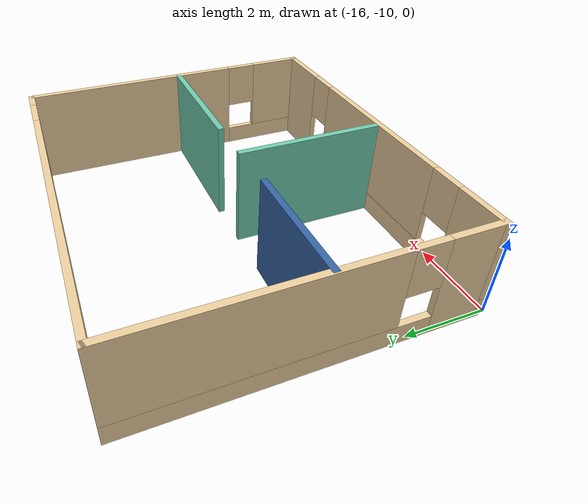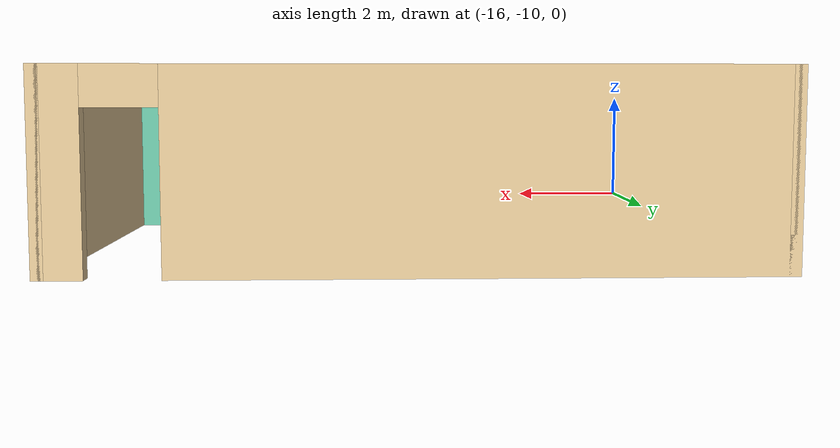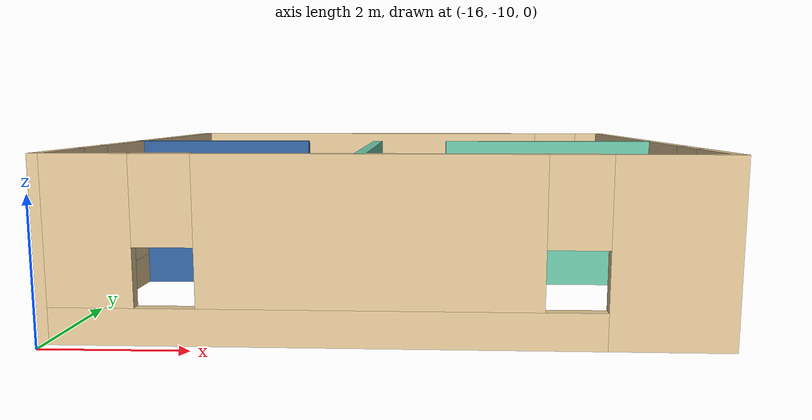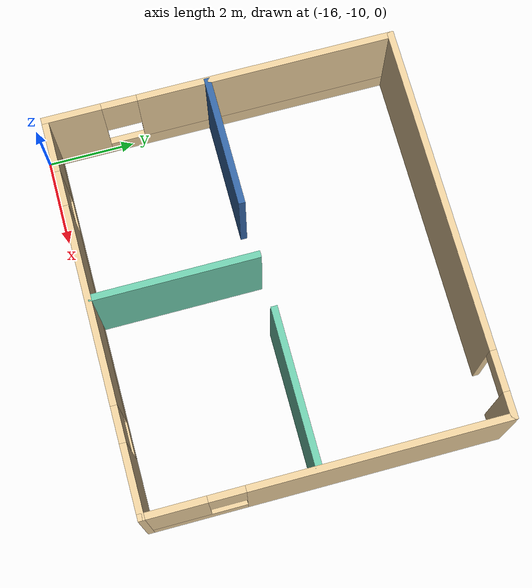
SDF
<?xml version='1.0'?>
<sdf version='1.7'>
  <model name='myHouse'>
    <pose>-8.0375 -4.9075 0 0 -0 0</pose>
    <link name='Wall_0'>
      <pose>-7.9625 -0.9075 0 0 -0 1.5708</pose>
      <visual name='Wall_0_Visual_0'>
        <pose>-3.3325 0 1.25 0 -0 0</pose>
        <geometry>
          <box>
            <size>1.335 0.15 2.5</size>
          </box>
        </geometry>
        <material>
          <script>
            <uri>file://media/materials/scripts/gazebo.material</uri>
            <name>Gazebo/Grey</name>
          </script>
          <ambient>0.921569 0.807843 0.615686 1</ambient>
        </material>
        <meta>
          <layer>0</layer>
        </meta>
      </visual>
      <collision name='Wall_0_Collision_0'>
        <geometry>
          <box>
            <size>1.335 0.15 2.5</size>
          </box>
        </geometry>
        <pose>-3.3325 0 1.25 0 -0 0</pose>
      </collision>
      <visual name='Wall_0_Visual_1'>
        <pose>0.6675 0 0.25 0 -0 0</pose>
        <geometry>
          <box>
            <size>6.665 0.15 0.5</size>
          </box>
        </geometry>
        <material>
          <script>
            <uri>file://media/materials/scripts/gazebo.material</uri>
            <name>Gazebo/Grey</name>
          </script>
          <ambient>0.921569 0.807843 0.615686 1</ambient>
        </material>
        <meta>
          <layer>0</layer>
        </meta>
      </visual>
      <collision name='Wall_0_Collision_1'>
        <geometry>
          <box>
            <size>6.665 0.15 0.5</size>
          </box>
        </geometry>
        <pose>0.6675 0 0.25 0 -0 0</pose>
      </collision>
      <visual name='Wall_0_Visual_2'>
        <pose>1.0675 0 1.5 0 -0 0</pose>
        <geometry>
          <box>
            <size>5.865 0.15 2</size>
          </box>
        </geometry>
        <material>
          <script>
            <uri>file://media/materials/scripts/gazebo.material</uri>
            <name>Gazebo/Grey</name>
          </script>
          <ambient>0.921569 0.807843 0.615686 1</ambient>
        </material>
        <meta>
          <layer>0</layer>
        </meta>
      </visual>
      <collision name='Wall_0_Collision_2'>
        <geometry>
          <box>
            <size>5.865 0.15 2</size>
          </box>
        </geometry>
        <pose>1.0675 0 1.5 0 -0 0</pose>
      </collision>
      <visual name='Wall_0_Visual_3'>
        <pose>-2.265 0 1.9 0 -0 0</pose>
        <geometry>
          <box>
            <size>0.8 0.15 1.2</size>
          </box>
        </geometry>
        <material>
          <script>
            <uri>file://media/materials/scripts/gazebo.material</uri>
            <name>Gazebo/Grey</name>
          </script>
          <ambient>0.921569 0.807843 0.615686 1</ambient>
        </material>
        <meta>
          <layer>0</layer>
        </meta>
      </visual>
      <collision name='Wall_0_Collision_3'>
        <geometry>
          <box>
            <size>0.8 0.15 1.2</size>
          </box>
        </geometry>
        <pose>-2.265 0 1.9 0 -0 0</pose>
      </collision>
    </link>
    <link name='Wall_1'>
      <pose>-3.5375 3.0175 0 0 -0 0</pose>
      <visual name='Wall_1_Visual_0'>
        <pose>-0.7525 0 1.25 0 -0 0</pose>
        <geometry>
          <box>
            <size>7.495 0.15 2.5</size>
          </box>
        </geometry>
        <material>
          <script>
            <uri>file://media/materials/scripts/gazebo.material</uri>
            <name>Gazebo/Grey</name>
          </script>
          <ambient>0.921569 0.807843 0.615686 1</ambient>
        </material>
        <meta>
          <layer>0</layer>
        </meta>
      </visual>
      <collision name='Wall_1_Collision_0'>
        <geometry>
          <box>
            <size>7.495 0.15 2.5</size>
          </box>
        </geometry>
        <pose>-0.7525 0 1.25 0 -0 0</pose>
      </collision>
      <visual name='Wall_1_Visual_1'>
        <pose>4.1975 0 1.25 0 -0 0</pose>
        <geometry>
          <box>
            <size>0.605 0.15 2.5</size>
          </box>
        </geometry>
        <material>
          <script>
            <uri>file://media/materials/scripts/gazebo.material</uri>
            <name>Gazebo/Grey</name>
          </script>
          <ambient>0.921569 0.807843 0.615686 1</ambient>
        </material>
        <meta>
          <layer>0</layer>
        </meta>
      </visual>
      <collision name='Wall_1_Collision_1'>
        <geometry>
          <box>
            <size>0.605 0.15 2.5</size>
          </box>
        </geometry>
        <pose>4.1975 0 1.25 0 -0 0</pose>
      </collision>
      <visual name='Wall_1_Visual_2'>
        <pose>3.445 0 2.25 0 -0 0</pose>
        <geometry>
          <box>
            <size>0.9 0.15 0.5</size>
          </box>
        </geometry>
        <material>
          <script>
            <uri>file://media/materials/scripts/gazebo.material</uri>
            <name>Gazebo/Grey</name>
          </script>
          <ambient>0.921569 0.807843 0.615686 1</ambient>
        </material>
        <meta>
          <layer>0</layer>
        </meta>
      </visual>
      <collision name='Wall_1_Collision_2'>
        <geometry>
          <box>
            <size>0.9 0.15 0.5</size>
          </box>
        </geometry>
        <pose>3.445 0 2.25 0 -0 0</pose>
      </collision>
    </link>
    <link name='Wall_2'>
      <pose>0.8875 -0.9075 0 0 -0 -1.5708</pose>
      <visual name='Wall_2_Visual_0'>
        <pose>-1.1275 0 1.25 0 -0 0</pose>
        <geometry>
          <box>
            <size>5.745 0.15 2.5</size>
          </box>
        </geometry>
        <material>
          <script>
            <uri>file://media/materials/scripts/gazebo.material</uri>
            <name>Gazebo/Grey</name>
          </script>
          <ambient>0.921569 0.807843 0.615686 1</ambient>
        </material>
        <meta>
          <layer>0</layer>
        </meta>
      </visual>
      <collision name='Wall_2_Collision_0'>
        <geometry>
          <box>
            <size>5.745 0.15 2.5</size>
          </box>
        </geometry>
        <pose>-1.1275 0 1.25 0 -0 0</pose>
      </collision>
      <visual name='Wall_2_Visual_1'>
        <pose>2.8725 0 0.25 0 -0 0</pose>
        <geometry>
          <box>
            <size>2.255 0.15 0.5</size>
          </box>
        </geometry>
        <material>
          <script>
            <uri>file://media/materials/scripts/gazebo.material</uri>
            <name>Gazebo/Grey</name>
          </script>
          <ambient>0.921569 0.807843 0.615686 1</ambient>
        </material>
        <meta>
          <layer>0</layer>
        </meta>
      </visual>
      <collision name='Wall_2_Collision_1'>
        <geometry>
          <box>
            <size>2.255 0.15 0.5</size>
          </box>
        </geometry>
        <pose>2.8725 0 0.25 0 -0 0</pose>
      </collision>
      <visual name='Wall_2_Visual_2'>
        <pose>3.2725 0 1.5 0 -0 0</pose>
        <geometry>
          <box>
            <size>1.455 0.15 2</size>
          </box>
        </geometry>
        <material>
          <script>
            <uri>file://media/materials/scripts/gazebo.material</uri>
            <name>Gazebo/Grey</name>
          </script>
          <ambient>0.921569 0.807843 0.615686 1</ambient>
        </material>
        <meta>
          <layer>0</layer>
        </meta>
      </visual>
      <collision name='Wall_2_Collision_2'>
        <geometry>
          <box>
            <size>1.455 0.15 2</size>
          </box>
        </geometry>
        <pose>3.2725 0 1.5 0 -0 0</pose>
      </collision>
      <visual name='Wall_2_Visual_3'>
        <pose>2.145 0 1.9 0 -0 0</pose>
        <geometry>
          <box>
            <size>0.8 0.15 1.2</size>
          </box>
        </geometry>
        <material>
          <script>
            <uri>file://media/materials/scripts/gazebo.material</uri>
            <name>Gazebo/Grey</name>
          </script>
          <ambient>0.921569 0.807843 0.615686 1</ambient>
        </material>
        <meta>
          <layer>0</layer>
        </meta>
      </visual>
      <collision name='Wall_2_Collision_3'>
        <geometry>
          <box>
            <size>0.8 0.15 1.2</size>
          </box>
        </geometry>
        <pose>2.145 0 1.9 0 -0 0</pose>
      </collision>
    </link>
    <link name='Wall_3'>
      <pose>-3.5375 -4.8325 0 0 -0 3.14159</pose>
      <visual name='Wall_3_Visual_0'>
        <pose>-3.6875 0 1.25 0 -0 0</pose>
        <geometry>
          <box>
            <size>1.625 0.15 2.5</size>
          </box>
        </geometry>
        <material>
          <script>
            <uri>file://media/materials/scripts/gazebo.material</uri>
            <name>Gazebo/Grey</name>
          </script>
          <ambient>0.921569 0.807843 0.615686 1</ambient>
        </material>
        <meta>
          <layer>0</layer>
        </meta>
      </visual>
      <collision name='Wall_3_Collision_0'>
        <geometry>
          <box>
            <size>1.625 0.15 2.5</size>
          </box>
        </geometry>
        <pose>-3.6875 0 1.25 0 -0 0</pose>
      </collision>
      <visual name='Wall_3_Visual_1'>
        <pose>0.8125 0 0.25 0 -0 0</pose>
        <geometry>
          <box>
            <size>7.375 0.15 0.5</size>
          </box>
        </geometry>
        <material>
          <script>
            <uri>file://media/materials/scripts/gazebo.material</uri>
            <name>Gazebo/Grey</name>
          </script>
          <ambient>0.921569 0.807843 0.615686 1</ambient>
        </material>
        <meta>
          <layer>0</layer>
        </meta>
      </visual>
      <collision name='Wall_3_Collision_1'>
        <geometry>
          <box>
            <size>7.375 0.15 0.5</size>
          </box>
        </geometry>
        <pose>0.8125 0 0.25 0 -0 0</pose>
      </collision>
      <visual name='Wall_3_Visual_2'>
        <pose>0.165 0 1.5 0 -0 0</pose>
        <geometry>
          <box>
            <size>4.48 0.15 2</size>
          </box>
        </geometry>
        <material>
          <script>
            <uri>file://media/materials/scripts/gazebo.material</uri>
            <name>Gazebo/Grey</name>
          </script>
          <ambient>0.921569 0.807843 0.615686 1</ambient>
        </material>
        <meta>
          <layer>0</layer>
        </meta>
      </visual>
      <collision name='Wall_3_Collision_2'>
        <geometry>
          <box>
            <size>4.48 0.15 2</size>
          </box>
        </geometry>
        <pose>0.165 0 1.5 0 -0 0</pose>
      </collision>
      <visual name='Wall_3_Visual_3'>
        <pose>3.8525 0 1.5 0 -0 0</pose>
        <geometry>
          <box>
            <size>1.295 0.15 2</size>
          </box>
        </geometry>
        <material>
          <script>
            <uri>file://media/materials/scripts/gazebo.material</uri>
            <name>Gazebo/Grey</name>
          </script>
          <ambient>0.921569 0.807843 0.615686 1</ambient>
        </material>
        <meta>
          <layer>0</layer>
        </meta>
      </visual>
      <collision name='Wall_3_Collision_3'>
        <geometry>
          <box>
            <size>1.295 0.15 2</size>
          </box>
        </geometry>
        <pose>3.8525 0 1.5 0 -0 0</pose>
      </collision>
      <visual name='Wall_3_Visual_4'>
        <pose>-2.475 0 1.9 0 -0 0</pose>
        <geometry>
          <box>
            <size>0.8 0.15 1.2</size>
          </box>
        </geometry>
        <material>
          <script>
            <uri>file://media/materials/scripts/gazebo.material</uri>
            <name>Gazebo/Grey</name>
          </script>
          <ambient>0.921569 0.807843 0.615686 1</ambient>
        </material>
        <meta>
          <layer>0</layer>
        </meta>
      </visual>
      <collision name='Wall_3_Collision_4'>
        <geometry>
          <box>
            <size>0.8 0.15 1.2</size>
          </box>
        </geometry>
        <pose>-2.475 0 1.9 0 -0 0</pose>
      </collision>
      <visual name='Wall_3_Visual_5'>
        <pose>2.805 0 1.9 0 -0 0</pose>
        <geometry>
          <box>
            <size>0.8 0.15 1.2</size>
          </box>
        </geometry>
        <material>
          <script>
            <uri>file://media/materials/scripts/gazebo.material</uri>
            <name>Gazebo/Grey</name>
          </script>
          <ambient>0.921569 0.807843 0.615686 1</ambient>
        </material>
        <meta>
          <layer>0</layer>
        </meta>
      </visual>
      <collision name='Wall_3_Collision_5'>
        <geometry>
          <box>
            <size>0.8 0.15 1.2</size>
          </box>
        </geometry>
        <pose>2.805 0 1.9 0 -0 0</pose>
      </collision>
    </link>
    <link name='Wall_5'>
      <collision name='Wall_5_Collision'>
        <geometry>
          <box>
            <size>3 0.15 2.5</size>
          </box>
        </geometry>
        <pose>0 0 1.25 0 -0 0</pose>
      </collision>
      <visual name='Wall_5_Visual'>
        <pose>0 0 1.25 0 -0 0</pose>
        <geometry>
          <box>
            <size>3 0.15 2.5</size>
          </box>
        </geometry>
        <material>
          <script>
            <uri>file://media/materials/scripts/gazebo.material</uri>
            <name>Gazebo/Grey</name>
          </script>
          <ambient>0.203922 0.396078 0.643137 1</ambient>
        </material>
        <meta>
          <layer>0</layer>
        </meta>
      </visual>
      <pose>-6.5075 -1.1725 0 0 -0 0</pose>
    </link>
    <link name='Wall_7'>
      <collision name='Wall_7_Collision'>
        <geometry>
          <box>
            <size>3.75 0.15 2.5</size>
          </box>
        </geometry>
        <pose>0 0 1.25 0 -0 0</pose>
      </collision>
      <visual name='Wall_7_Visual'>
        <pose>0 0 1.25 0 -0 0</pose>
        <geometry>
          <box>
            <size>3.75 0.15 2.5</size>
          </box>
        </geometry>
        <material>
          <script>
            <uri>file://media/materials/scripts/gazebo.material</uri>
            <name>Gazebo/Grey</name>
          </script>
          <ambient>0.435294 0.796078 0.67451 1</ambient>
        </material>
        <meta>
          <layer>0</layer>
        </meta>
      </visual>
      <pose>-3.8125 -2.9525 0 0 -0 -1.5708</pose>
    </link>
    <link name='Wall_9'>
      <collision name='Wall_9_Collision'>
        <geometry>
          <box>
            <size>3.5 0.15 2.5</size>
          </box>
        </geometry>
        <pose>0 0 1.25 0 -0 0</pose>
      </collision>
      <visual name='Wall_9_Visual'>
        <pose>0 0 1.25 0 -0 0</pose>
        <geometry>
          <box>
            <size>3.5 0.15 2.5</size>
          </box>
        </geometry>
        <material>
          <script>
            <uri>file://media/materials/scripts/gazebo.material</uri>
            <name>Gazebo/Grey</name>
          </script>
          <ambient>0.435294 0.796078 0.67451 1</ambient>
        </material>
        <meta>
          <layer>0</layer>
        </meta>
      </visual>
      <pose>-0.8875 -1.1125 0 0 -0 0</pose>
    </link>
    <static>1</static>
  </model>
</sdf>
